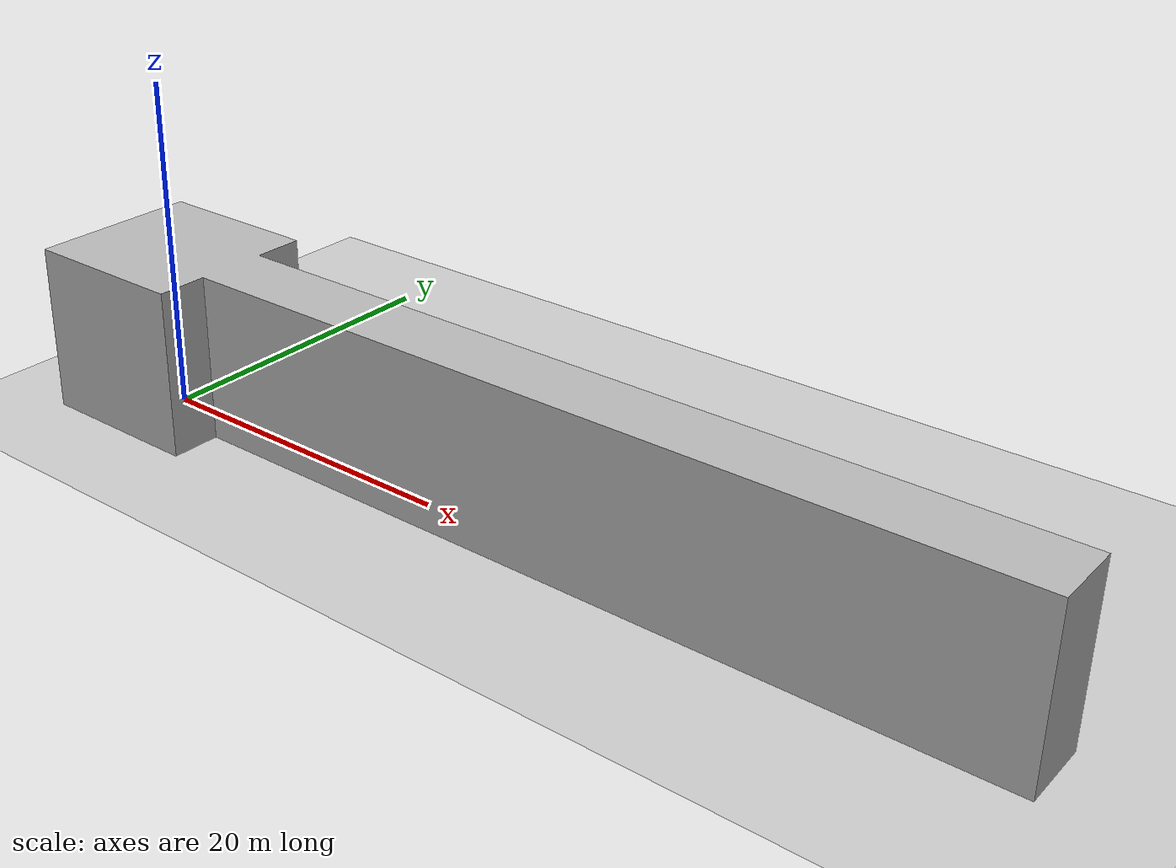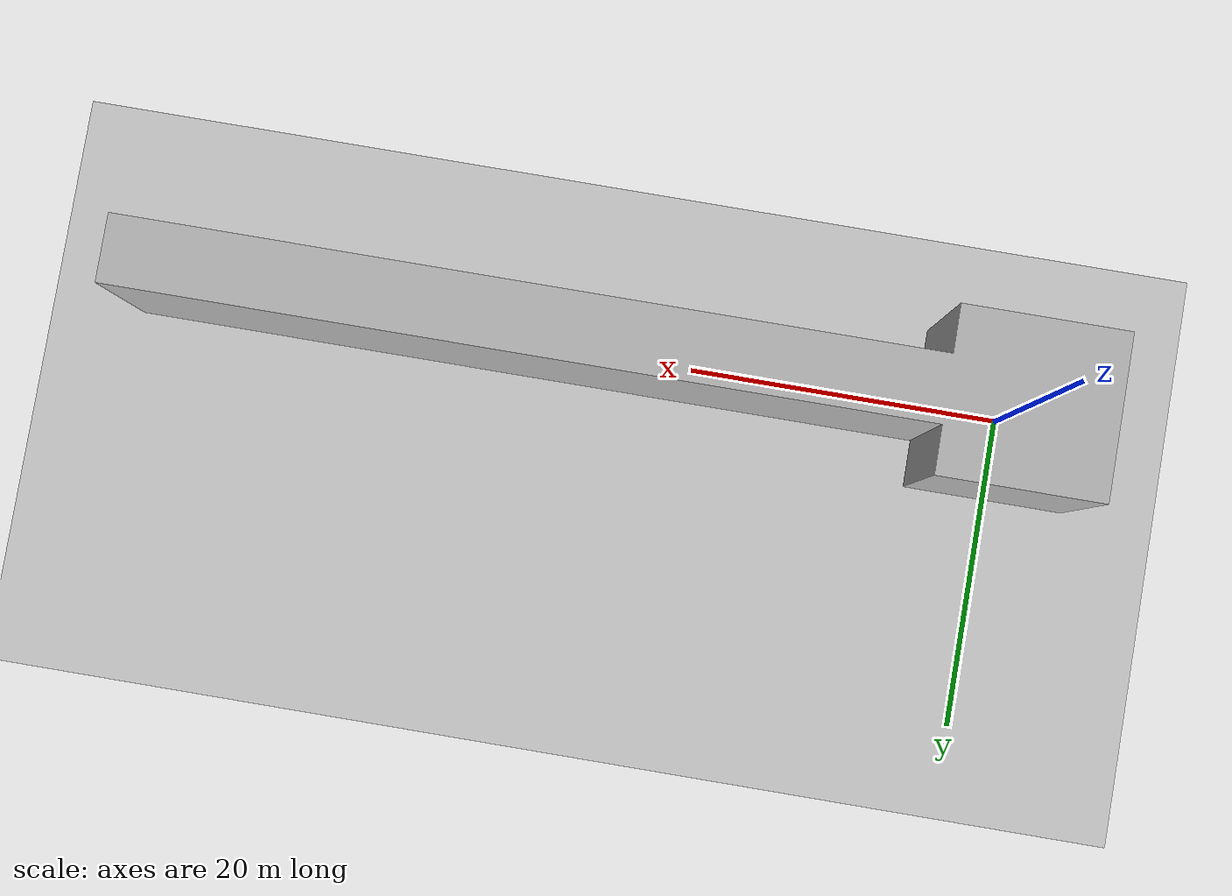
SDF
<?xml version="1.0" ?>
<sdf version="1.4">
  <world name="default">
    <include>
      <uri>model://ground_plane</uri>
    </include>
    <include>
      <uri>model://sun</uri>
    </include>
    <include>
      <uri>model://lab4</uri>
      <pose>0 0 0 0 0 0</pose>
    </include>

    <!-- Only require one ROS interface plugin per world, as any other plugin can connect a Gazebo
        topic to a ROS topic (or vise versa). -->
    <plugin name="ros_interface_plugin" filename="librotors_gazebo_ros_interface_plugin.so"></plugin>

    <spherical_coordinates>
      <surface_model>EARTH_WGS84</surface_model>
      <latitude_deg>47.3667</latitude_deg>
      <longitude_deg>8.5500</longitude_deg>
      <elevation>500.0</elevation>
      <heading_deg>0</heading_deg>
    </spherical_coordinates>
    <physics type='ode'>
      <ode>
        <solver>
          <type>quick</type>
          <iters>1000</iters>
          <sor>1.3</sor>
        </solver>
        <constraints>
          <cfm>0</cfm>
          <erp>0.2</erp>
          <contact_max_correcting_vel>100</contact_max_correcting_vel>
          <contact_surface_layer>0.001</contact_surface_layer>
        </constraints>
      </ode>
      <max_step_size>0.01</max_step_size>
      <real_time_factor>1</real_time_factor>
      <real_time_update_rate>100</real_time_update_rate>
      <gravity>0 0 -9.8</gravity>
    </physics>
  </world>
</sdf>

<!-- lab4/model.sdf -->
<sdf version="1.4">
<model name="lab4">
  <pose>0 0 0 0 0 0</pose>
  <static>true</static>
    <link name="link">
      <inertial>
        <mass>1.0</mass>
        <inertia> <!-- interias are tricky to compute -->
          <!-- http://answers.gazebosim.org/question/4372/the-inertia-matrix-explained/ -->
          <ixx>0.083</ixx>       <!-- for a box: ixx = 0.083 * mass * (y*y + z*z) -->
          <ixy>0.0</ixy>         <!-- for a box: ixy = 0 -->
          <ixz>0.0</ixz>         <!-- for a box: ixz = 0 -->
          <iyy>0.083</iyy>       <!-- for a box: iyy = 0.083 * mass * (x*x + z*z) -->
          <iyz>0.0</iyz>         <!-- for a box: iyz = 0 -->
          <izz>0.083</izz>       <!-- for a box: izz = 0.083 * mass * (x*x + y*y) -->
        </inertia>
      </inertial>
      <collision name="collision">
        <geometry>
          <mesh>
            <uri>model://lab4/meshes/lab4.STL</uri>
            <scale>40 40 40</scale>
          </mesh>
        </geometry>
      </collision>
      <visual name="visual">
        <geometry>
          <mesh>
            <uri>model://lab4/meshes/lab4.STL</uri>
            <scale>40 40 40</scale>
          </mesh>
        </geometry>
      </visual>
    </link>
  </model>
</sdf>
